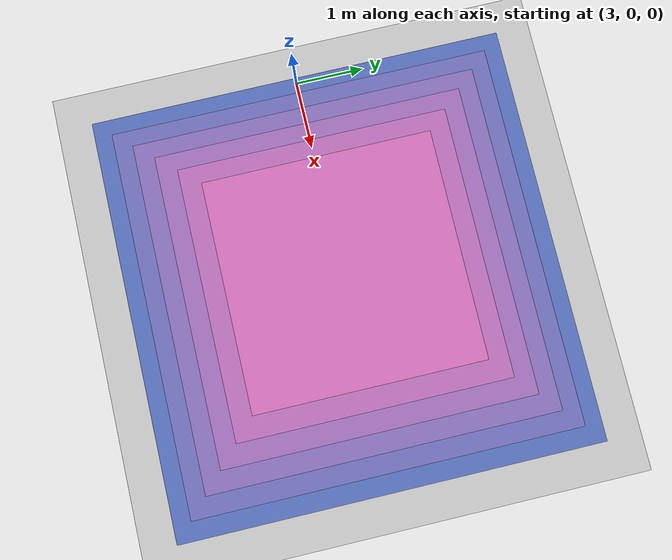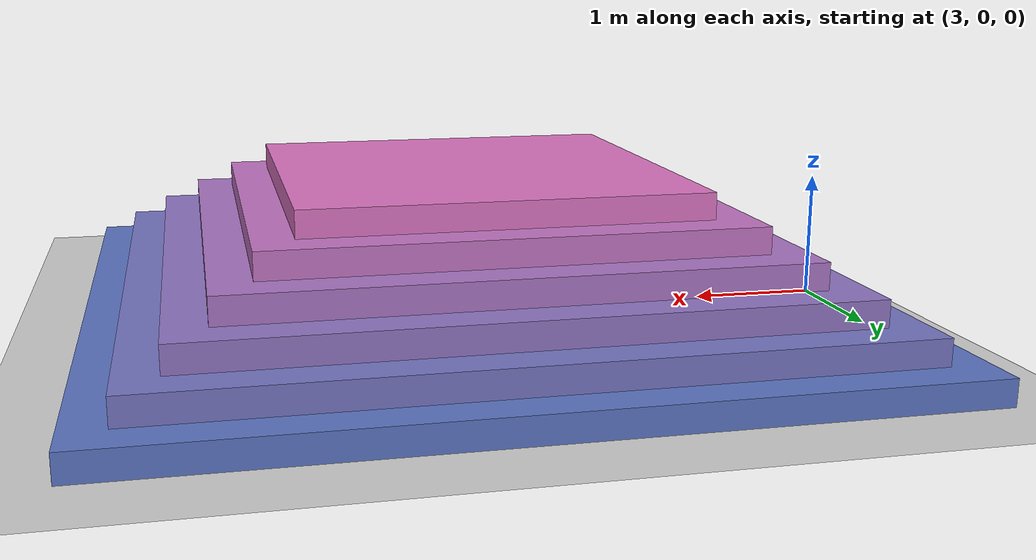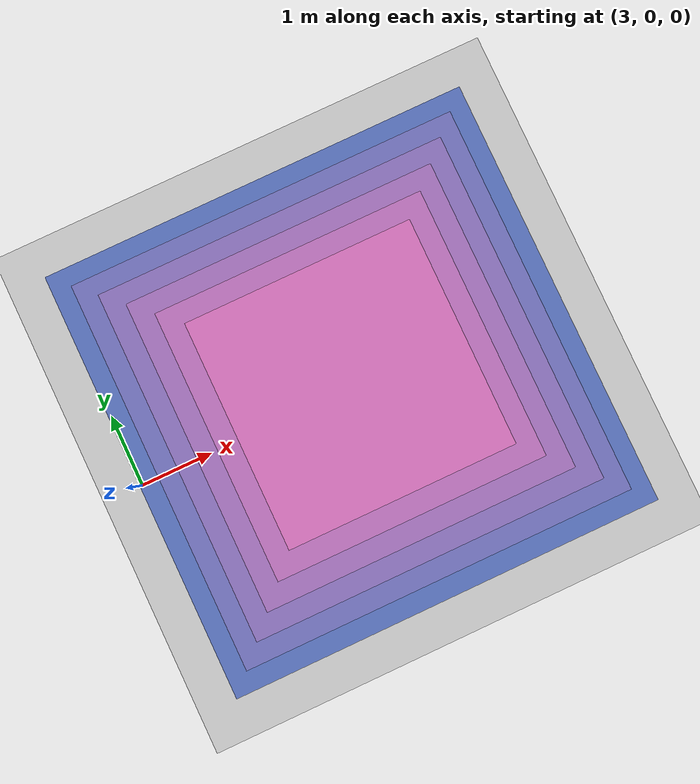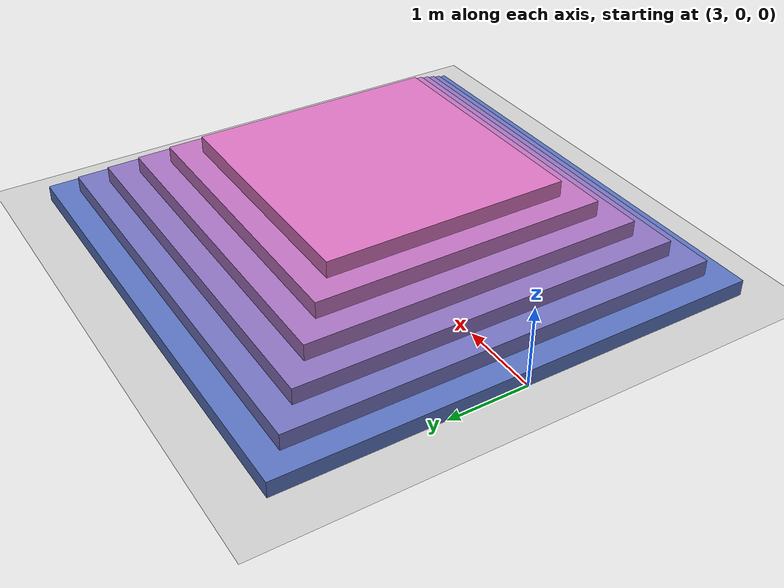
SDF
<?xml version="1.0"?>
<sdf version="1.6">
  <!-- We use a custom world for the rrbot so that the camera angle is launched correctly -->

  <world name="default">

    <plugin
      filename="gz-sim-physics-system"
      name="gz::sim::systems::Physics">
    </plugin>
    <plugin
      filename="gz-sim-air-pressure-system"
      name="gz::sim::systems::AirPressure">
    </plugin>
    <plugin
      filename="gz-sim-altimeter-system"
      name="gz::sim::systems::Altimeter">
    </plugin>
    <plugin
      filename="gz-sim-imu-system"
      name="gz::sim::systems::Imu">
    </plugin>
    <plugin
      filename="gz-sim-sensors-system"
      name="gz::sim::systems::Sensors">
      <render_engine>ogre2</render_engine>
    </plugin>
    <plugin
      filename="gz-sim-magnetometer-system"
      name="gz::sim::systems::Magnetometer">
    </plugin>
    <plugin
      filename="gz-sim-forcetorque-system"
      name="gz::sim::systems::ForceTorque">
    </plugin>
    <plugin
      filename="gz-sim-user-commands-system"
      name="gz::sim::systems::UserCommands">
    </plugin>
    <plugin
      filename="gz-sim-scene-broadcaster-system"
      name="gz::sim::systems::SceneBroadcaster">
    </plugin>
    <gravity>0 0 -9.81</gravity>

    <light type="directional" name="sun">
      <cast_shadows>true</cast_shadows>
      <pose>0 0 10 0 0 0</pose>
      <diffuse>0.8 0.8 0.8 1</diffuse>
      <specular>0.2 0.2 0.2 1</specular>
      <attenuation>
        <range>1000</range>
        <constant>0.9</constant>
        <linear>0.01</linear>
        <quadratic>0.001</quadratic>
      </attenuation>
      <direction>-0.5 0.1 -0.9</direction>
    </light>

    <model name="ground_plane">
      <static>true</static>
      <link name="link">
        <collision name="collision">
          <geometry>
            <plane>
              <normal>0 0 1</normal>
              <size>100 100</size>
            </plane>
          </geometry>
        </collision>
        <visual name="visual">
          <geometry>
            <plane>
              <normal>0 0 1</normal>
              <size>100 100</size>
            </plane>
          </geometry>
          <material>
            <ambient>0.8 0.8 0.8 1</ambient>
            <diffuse>0.8 0.8 0.8 1</diffuse>
            <specular>0.8 0.8 0.8 1</specular>
          </material>
        </visual>
      </link>
    </model>

    <!-- Focus camera on tall pendulum -->
    <gui fullscreen='0'>
      <camera name='user_camera'>
        <pose>4.927360 -4.376610 3.740080 0.000000 0.275643 2.356190</pose>
        <view_controller>orbit</view_controller>
      </camera>
    </gui>

    <physics name="update_rate" type="ode">
      <real_time_update_rate>1000</real_time_update_rate>
      <max_step_size>0.001</max_step_size>
      <max_contacts>10</max_contacts>
      <bullet>
        <solver>
          <iters>100</iters>
          <sor>1.55</sor>
        </solver>
        <constraints>
          <contact_surface_layer>0.2</contact_surface_layer>
          <cfm>0.005</cfm>
          <erp>0.2</erp>
        </constraints>
      </bullet>
      <ode>
        <solver>
          <iters>50</iters>
          <sor>1.20</sor>
        </solver>
        <constraints>
          <contact_surface_layer>0.0002</contact_surface_layer>
          <contact_max_correcting_vel>500</contact_max_correcting_vel>
          <cfm>0.000001</cfm>
          <erp>0.3</erp>
        </constraints>
      </ode>
    </physics>

      <model name="stepped_pyramid">
      <static>true</static>
      <pose>6.0 0.0 0 0 0 0</pose>
      <link name="pyramid_link">
        <collision name="step_00_collision">
          <pose>0 0 0.1000 0 0 0</pose>
          <geometry><box><size>6.000 6.000 0.2000</size></box></geometry>
          <surface><friction><ode><mu>1.0</mu><mu2>1.0</mu2></ode></friction></surface>
        </collision>
        <visual name="step_00_visual">
          <pose>0 0 0.1000 0 0 0</pose>
          <geometry><box><size>6.000 6.000 0.2000</size></box></geometry>
          <material><ambient>0.35 0.45 0.75 1</ambient><diffuse>0.35 0.45 0.75 1</diffuse></material>
        </visual>
        <collision name="step_01_collision">
          <pose>0 0 0.3000 0 0 0</pose>
          <geometry><box><size>5.400 5.400 0.2000</size></box></geometry>
          <surface><friction><ode><mu>1.0</mu><mu2>1.0</mu2></ode></friction></surface>
        </collision>
        <visual name="step_01_visual">
          <pose>0 0 0.3000 0 0 0</pose>
          <geometry><box><size>5.400 5.400 0.2000</size></box></geometry>
          <material><ambient>0.45 0.45 0.75 1</ambient><diffuse>0.45 0.45 0.75 1</diffuse></material>
        </visual>
        <collision name="step_02_collision">
          <pose>0 0 0.5000 0 0 0</pose>
          <geometry><box><size>4.800 4.800 0.2000</size></box></geometry>
          <surface><friction><ode><mu>1.0</mu><mu2>1.0</mu2></ode></friction></surface>
        </collision>
        <visual name="step_02_visual">
          <pose>0 0 0.5000 0 0 0</pose>
          <geometry><box><size>4.800 4.800 0.2000</size></box></geometry>
          <material><ambient>0.55 0.45 0.75 1</ambient><diffuse>0.55 0.45 0.75 1</diffuse></material>
        </visual>
        <collision name="step_03_collision">
          <pose>0 0 0.7000 0 0 0</pose>
          <geometry><box><size>4.200 4.200 0.2000</size></box></geometry>
          <surface><friction><ode><mu>1.0</mu><mu2>1.0</mu2></ode></friction></surface>
        </collision>
        <visual name="step_03_visual">
          <pose>0 0 0.7000 0 0 0</pose>
          <geometry><box><size>4.200 4.200 0.2000</size></box></geometry>
          <material><ambient>0.65 0.45 0.75 1</ambient><diffuse>0.65 0.45 0.75 1</diffuse></material>
        </visual>
        <collision name="step_04_collision">
          <pose>0 0 0.9000 0 0 0</pose>
          <geometry><box><size>3.600 3.600 0.2000</size></box></geometry>
          <surface><friction><ode><mu>1.0</mu><mu2>1.0</mu2></ode></friction></surface>
        </collision>
        <visual name="step_04_visual">
          <pose>0 0 0.9000 0 0 0</pose>
          <geometry><box><size>3.600 3.600 0.2000</size></box></geometry>
          <material><ambient>0.75 0.45 0.75 1</ambient><diffuse>0.75 0.45 0.75 1</diffuse></material>
        </visual>
        <collision name="step_05_collision">
          <pose>0 0 1.1000 0 0 0</pose>
          <geometry><box><size>3.000 3.000 0.2000</size></box></geometry>
          <surface><friction><ode><mu>1.0</mu><mu2>1.0</mu2></ode></friction></surface>
        </collision>
        <visual name="step_05_visual">
          <pose>0 0 1.1000 0 0 0</pose>
          <geometry><box><size>3.000 3.000 0.2000</size></box></geometry>
          <material><ambient>0.85 0.45 0.75 1</ambient><diffuse>0.85 0.45 0.75 1</diffuse></material>
        </visual>
      </link>
    </model>
</world>
</sdf>
